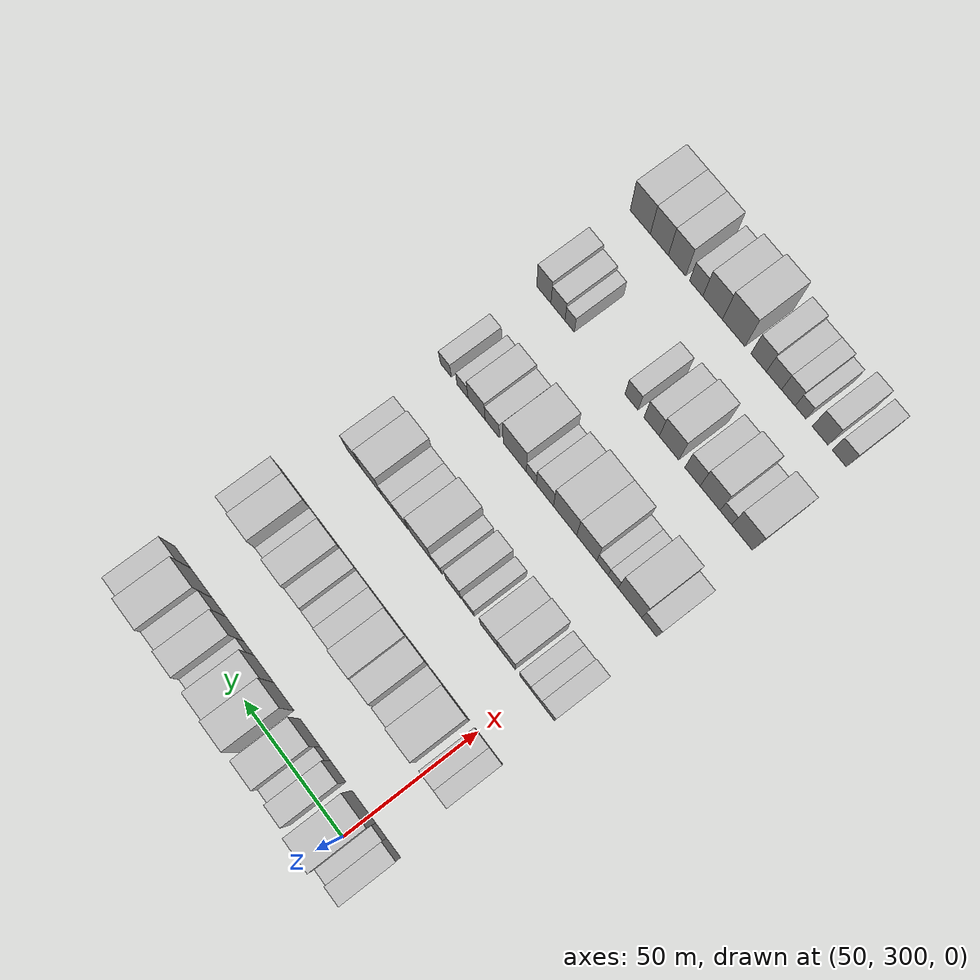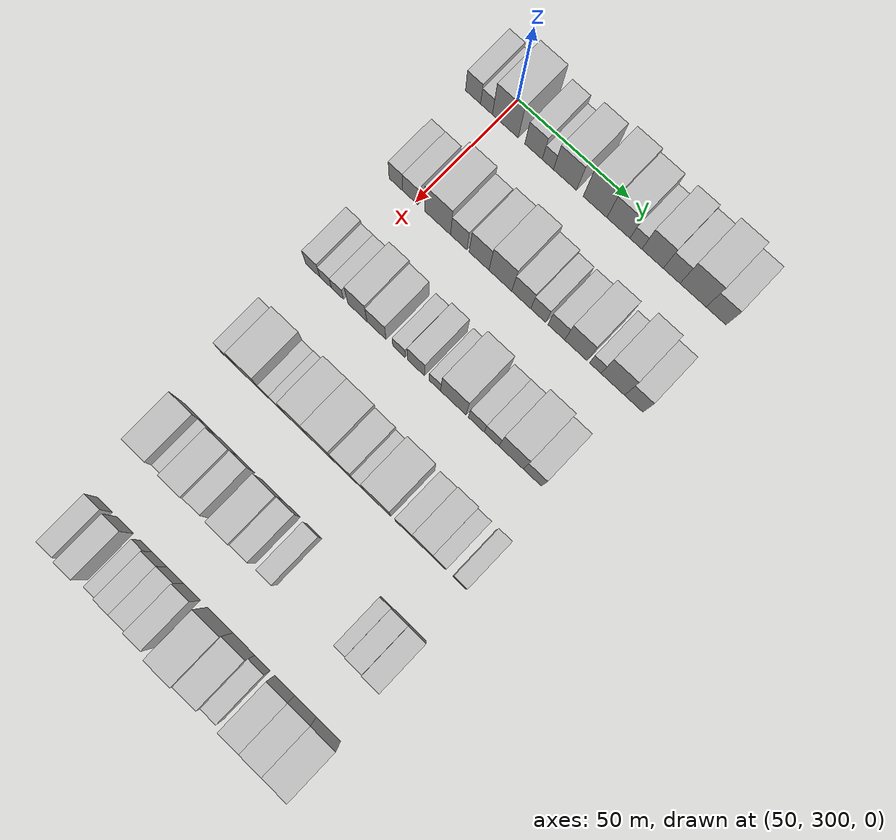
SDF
<sdf version="1.6">
 <world name="default">
  <model name="building_94">
   <static>1</static>
   <pose>50.0000 288.3734 0 0.000000 0.000000 0.000000</pose>
   <link name="link">
    <pose>0 0 7.50 0 0 0</pose>
    <collision name="collision"><geometry><box><size>20.0000 6.9598 15.0000</size></box></geometry></collision>
    <visual name="visual">
     <cast_shadows>0</cast_shadows>
     <geometry><box><size>20.0000 6.9598 15.0000</size></box></geometry>
     <material>
      <script>
       <uri>model://HANNAS_wall/materials/scripts</uri>
       <uri>model://HANNAS_wall/materials/textures</uri>
       <name>vrc/HANNAS_wall</name>
      </script>
     </material>
    </visual>
   </link>
  </model>
  <model name="building_95">
   <static>1</static>
   <pose>50.0000 294.5528 0 0.000000 0.000000 0.000000</pose>
   <link name="link">
    <pose>0 0 6.00 0 0 0</pose>
    <collision name="collision"><geometry><box><size>20.0000 5.3990 12.0000</size></box></geometry></collision>
    <visual name="visual">
     <cast_shadows>0</cast_shadows>
     <geometry><box><size>20.0000 5.3990 12.0000</size></box></geometry>
     <material>
      <script>
       <uri>model://HANNAS_wall/materials/scripts</uri>
       <uri>model://HANNAS_wall/materials/textures</uri>
       <name>vrc/HANNAS_wall</name>
      </script>
     </material>
    </visual>
   </link>
  </model>
  <model name="building_96">
   <static>1</static>
   <pose>50.0000 303.1798 0 0.000000 0.000000 0.000000</pose>
   <link name="link">
    <pose>0 0 12.00 0 0 0</pose>
    <collision name="collision"><geometry><box><size>20.0000 11.8550 24.0000</size></box></geometry></collision>
    <visual name="visual">
     <cast_shadows>0</cast_shadows>
     <geometry><box><size>20.0000 11.8550 24.0000</size></box></geometry>
     <material>
      <script>
       <uri>model://HANNAS_wall/materials/scripts</uri>
       <uri>model://HANNAS_wall/materials/textures</uri>
       <name>vrc/HANNAS_wall</name>
      </script>
     </material>
    </visual>
   </link>
  </model>
  <model name="building_97">
   <static>1</static>
   <pose>50.0000 316.0882 0 0.000000 0.000000 0.000000</pose>
   <link name="link">
    <pose>0 0 9.00 0 0 0</pose>
    <collision name="collision"><geometry><box><size>20.0000 7.9619 18.0000</size></box></geometry></collision>
    <visual name="visual">
     <cast_shadows>0</cast_shadows>
     <geometry><box><size>20.0000 7.9619 18.0000</size></box></geometry>
     <material>
      <script>
       <uri>model://HANNAS_wall/materials/scripts</uri>
       <uri>model://HANNAS_wall/materials/textures</uri>
       <name>vrc/HANNAS_wall</name>
      </script>
     </material>
    </visual>
   </link>
  </model>
  <model name="building_98">
   <static>1</static>
   <pose>50.0000 322.5999 0 0.000000 0.000000 0.000000</pose>
   <link name="link">
    <pose>0 0 6.00 0 0 0</pose>
    <collision name="collision"><geometry><box><size>20.0000 5.0614 12.0000</size></box></geometry></collision>
    <visual name="visual">
     <cast_shadows>0</cast_shadows>
     <geometry><box><size>20.0000 5.0614 12.0000</size></box></geometry>
     <material>
      <script>
       <uri>model://HANNAS_wall/materials/scripts</uri>
       <uri>model://HANNAS_wall/materials/textures</uri>
       <name>vrc/HANNAS_wall</name>
      </script>
     </material>
    </visual>
   </link>
  </model>
  <model name="building_99">
   <static>1</static>
   <pose>50.0000 330.3303 0 0.000000 0.000000 0.000000</pose>
   <link name="link">
    <pose>0 0 10.50 0 0 0</pose>
    <collision name="collision"><geometry><box><size>20.0000 10.3994 21.0000</size></box></geometry></collision>
    <visual name="visual">
     <cast_shadows>0</cast_shadows>
     <geometry><box><size>20.0000 10.3994 21.0000</size></box></geometry>
     <material>
      <script>
       <uri>model://HANNAS_wall/materials/scripts</uri>
       <uri>model://HANNAS_wall/materials/textures</uri>
       <name>vrc/HANNAS_wall</name>
      </script>
     </material>
    </visual>
   </link>
  </model>
  <model name="building_100">
   <static>1</static>
   <pose>50.0000 343.8499 0 0.000000 0.000000 0.000000</pose>
   <link name="link">
    <pose>0 0 12.00 0 0 0</pose>
    <collision name="collision"><geometry><box><size>20.0000 10.6398 24.0000</size></box></geometry></collision>
    <visual name="visual">
     <cast_shadows>0</cast_shadows>
     <geometry><box><size>20.0000 10.6398 24.0000</size></box></geometry>
     <material>
      <script>
       <uri>model://HANNAS_wall/materials/scripts</uri>
       <uri>model://HANNAS_wall/materials/textures</uri>
       <name>vrc/HANNAS_wall</name>
      </script>
     </material>
    </visual>
   </link>
  </model>
  <model name="building_101">
   <static>1</static>
   <pose>50.0000 354.2996 0 0.000000 0.000000 0.000000</pose>
   <link name="link">
    <pose>0 0 10.50 0 0 0</pose>
    <collision name="collision"><geometry><box><size>20.0000 10.2597 21.0000</size></box></geometry></collision>
    <visual name="visual">
     <cast_shadows>0</cast_shadows>
     <geometry><box><size>20.0000 10.2597 21.0000</size></box></geometry>
     <material>
      <script>
       <uri>model://HANNAS_wall/materials/scripts</uri>
       <uri>model://HANNAS_wall/materials/textures</uri>
       <name>vrc/HANNAS_wall</name>
      </script>
     </material>
    </visual>
   </link>
  </model>
  <model name="building_102">
   <static>1</static>
   <pose>50.0000 362.0785 0 0.000000 0.000000 0.000000</pose>
   <link name="link">
    <pose>0 0 6.00 0 0 0</pose>
    <collision name="collision"><geometry><box><size>20.0000 5.2979 12.0000</size></box></geometry></collision>
    <visual name="visual">
     <cast_shadows>0</cast_shadows>
     <geometry><box><size>20.0000 5.2979 12.0000</size></box></geometry>
     <material>
      <script>
       <uri>model://HANNAS_wall/materials/scripts</uri>
       <uri>model://HANNAS_wall/materials/textures</uri>
       <name>vrc/HANNAS_wall</name>
      </script>
     </material>
    </visual>
   </link>
  </model>
  <model name="building_103">
   <static>1</static>
   <pose>50.0000 369.4188 0 0.000000 0.000000 0.000000</pose>
   <link name="link">
    <pose>0 0 10.50 0 0 0</pose>
    <collision name="collision"><geometry><box><size>20.0000 9.3828 21.0000</size></box></geometry></collision>
    <visual name="visual">
     <cast_shadows>0</cast_shadows>
     <geometry><box><size>20.0000 9.3828 21.0000</size></box></geometry>
     <material>
      <script>
       <uri>model://HANNAS_wall/materials/scripts</uri>
       <uri>model://HANNAS_wall/materials/textures</uri>
       <name>vrc/HANNAS_wall</name>
      </script>
     </material>
    </visual>
   </link>
  </model>
  <model name="building_104">
   <static>1</static>
   <pose>50.0000 377.7836 0 0.000000 0.000000 0.000000</pose>
   <link name="link">
    <pose>0 0 9.00 0 0 0</pose>
    <collision name="collision"><geometry><box><size>20.0000 7.3469 18.0000</size></box></geometry></collision>
    <visual name="visual">
     <cast_shadows>0</cast_shadows>
     <geometry><box><size>20.0000 7.3469 18.0000</size></box></geometry>
     <material>
      <script>
       <uri>model://HANNAS_wall/materials/scripts</uri>
       <uri>model://HANNAS_wall/materials/textures</uri>
       <name>vrc/HANNAS_wall</name>
      </script>
     </material>
    </visual>
   </link>
  </model>
  <model name="building_105">
   <static>1</static>
   <pose>50.0000 387.1549 0 0.000000 0.000000 0.000000</pose>
   <link name="link">
    <pose>0 0 12.00 0 0 0</pose>
    <collision name="collision"><geometry><box><size>20.0000 11.3957 24.0000</size></box></geometry></collision>
    <visual name="visual">
     <cast_shadows>0</cast_shadows>
     <geometry><box><size>20.0000 11.3957 24.0000</size></box></geometry>
     <material>
      <script>
       <uri>model://HANNAS_wall/materials/scripts</uri>
       <uri>model://HANNAS_wall/materials/textures</uri>
       <name>vrc/HANNAS_wall</name>
      </script>
     </material>
    </visual>
   </link>
  </model>
  <model name="building_106">
   <static>1</static>
   <pose>50.0000 397.1742 0 0.000000 0.000000 0.000000</pose>
   <link name="link">
    <pose>0 0 9.00 0 0 0</pose>
    <collision name="collision"><geometry><box><size>20.0000 8.6430 18.0000</size></box></geometry></collision>
    <visual name="visual">
     <cast_shadows>0</cast_shadows>
     <geometry><box><size>20.0000 8.6430 18.0000</size></box></geometry>
     <material>
      <script>
       <uri>model://HANNAS_wall/materials/scripts</uri>
       <uri>model://HANNAS_wall/materials/textures</uri>
       <name>vrc/HANNAS_wall</name>
      </script>
     </material>
    </visual>
   </link>
  </model>
  <model name="building_227">
   <static>1</static>
   <pose>90.0000 290.9614 0 0.000000 0.000000 0.000000</pose>
   <link name="link">
    <pose>0 0 7.50 0 0 0</pose>
    <collision name="collision"><geometry><box><size>20.0000 6.2033 15.0000</size></box></geometry></collision>
    <visual name="visual">
     <cast_shadows>0</cast_shadows>
     <geometry><box><size>20.0000 6.2033 15.0000</size></box></geometry>
     <material>
      <script>
       <uri>model://HANNAS_wall/materials/scripts</uri>
       <uri>model://HANNAS_wall/materials/textures</uri>
       <name>vrc/HANNAS_wall</name>
      </script>
     </material>
    </visual>
   </link>
  </model>
  <model name="building_228">
   <static>1</static>
   <pose>90.0000 297.5944 0 0.000000 0.000000 0.000000</pose>
   <link name="link">
    <pose>0 0 7.50 0 0 0</pose>
    <collision name="collision"><geometry><box><size>20.0000 7.0626 15.0000</size></box></geometry></collision>
    <visual name="visual">
     <cast_shadows>0</cast_shadows>
     <geometry><box><size>20.0000 7.0626 15.0000</size></box></geometry>
     <material>
      <script>
       <uri>model://HANNAS_wall/materials/scripts</uri>
       <uri>model://HANNAS_wall/materials/textures</uri>
       <name>vrc/HANNAS_wall</name>
      </script>
     </material>
    </visual>
   </link>
  </model>
  <model name="building_229">
   <static>1</static>
   <pose>90.0000 310.0366 0 0.000000 0.000000 0.000000</pose>
   <link name="link">
    <pose>0 0 12.00 0 0 0</pose>
    <collision name="collision"><geometry><box><size>20.0000 11.8219 24.0000</size></box></geometry></collision>
    <visual name="visual">
     <cast_shadows>0</cast_shadows>
     <geometry><box><size>20.0000 11.8219 24.0000</size></box></geometry>
     <material>
      <script>
       <uri>model://HANNAS_wall/materials/scripts</uri>
       <uri>model://HANNAS_wall/materials/textures</uri>
       <name>vrc/HANNAS_wall</name>
      </script>
     </material>
    </visual>
   </link>
  </model>
  <model name="building_230">
   <static>1</static>
   <pose>90.0000 319.6495 0 0.000000 0.000000 0.000000</pose>
   <link name="link">
    <pose>0 0 9.00 0 0 0</pose>
    <collision name="collision"><geometry><box><size>20.0000 7.4039 18.0000</size></box></geometry></collision>
    <visual name="visual">
     <cast_shadows>0</cast_shadows>
     <geometry><box><size>20.0000 7.4039 18.0000</size></box></geometry>
     <material>
      <script>
       <uri>model://HANNAS_wall/materials/scripts</uri>
       <uri>model://HANNAS_wall/materials/textures</uri>
       <name>vrc/HANNAS_wall</name>
      </script>
     </material>
    </visual>
   </link>
  </model>
  <model name="building_231">
   <static>1</static>
   <pose>90.0000 328.8360 0 0.000000 0.000000 0.000000</pose>
   <link name="link">
    <pose>0 0 10.50 0 0 0</pose>
    <collision name="collision"><geometry><box><size>20.0000 8.9690 21.0000</size></box></geometry></collision>
    <visual name="visual">
     <cast_shadows>0</cast_shadows>
     <geometry><box><size>20.0000 8.9690 21.0000</size></box></geometry>
     <material>
      <script>
       <uri>model://HANNAS_wall/materials/scripts</uri>
       <uri>model://HANNAS_wall/materials/textures</uri>
       <name>vrc/HANNAS_wall</name>
      </script>
     </material>
    </visual>
   </link>
  </model>
  <model name="building_232">
   <static>1</static>
   <pose>90.0000 338.4058 0 0.000000 0.000000 0.000000</pose>
   <link name="link">
    <pose>0 0 12.00 0 0 0</pose>
    <collision name="collision"><geometry><box><size>20.0000 10.1706 24.0000</size></box></geometry></collision>
    <visual name="visual">
     <cast_shadows>0</cast_shadows>
     <geometry><box><size>20.0000 10.1706 24.0000</size></box></geometry>
     <material>
      <script>
       <uri>model://HANNAS_wall/materials/scripts</uri>
       <uri>model://HANNAS_wall/materials/textures</uri>
       <name>vrc/HANNAS_wall</name>
      </script>
     </material>
    </visual>
   </link>
  </model>
  <model name="building_233">
   <static>1</static>
   <pose>90.0000 347.7431 0 0.000000 0.000000 0.000000</pose>
   <link name="link">
    <pose>0 0 9.00 0 0 0</pose>
    <collision name="collision"><geometry><box><size>20.0000 8.5040 18.0000</size></box></geometry></collision>
    <visual name="visual">
     <cast_shadows>0</cast_shadows>
     <geometry><box><size>20.0000 8.5040 18.0000</size></box></geometry>
     <material>
      <script>
       <uri>model://HANNAS_wall/materials/scripts</uri>
       <uri>model://HANNAS_wall/materials/textures</uri>
       <name>vrc/HANNAS_wall</name>
      </script>
     </material>
    </visual>
   </link>
  </model>
  <model name="building_234">
   <static>1</static>
   <pose>90.0000 355.3225 0 0.000000 0.000000 0.000000</pose>
   <link name="link">
    <pose>0 0 7.50 0 0 0</pose>
    <collision name="collision"><geometry><box><size>20.0000 6.6549 15.0000</size></box></geometry></collision>
    <visual name="visual">
     <cast_shadows>0</cast_shadows>
     <geometry><box><size>20.0000 6.6549 15.0000</size></box></geometry>
     <material>
      <script>
       <uri>model://HANNAS_wall/materials/scripts</uri>
       <uri>model://HANNAS_wall/materials/textures</uri>
       <name>vrc/HANNAS_wall</name>
      </script>
     </material>
    </visual>
   </link>
  </model>
  <model name="building_235">
   <static>1</static>
   <pose>90.0000 363.3416 0 0.000000 0.000000 0.000000</pose>
   <link name="link">
    <pose>0 0 7.50 0 0 0</pose>
    <collision name="collision"><geometry><box><size>20.0000 7.3833 15.0000</size></box></geometry></collision>
    <visual name="visual">
     <cast_shadows>0</cast_shadows>
     <geometry><box><size>20.0000 7.3833 15.0000</size></box></geometry>
     <material>
      <script>
       <uri>model://HANNAS_wall/materials/scripts</uri>
       <uri>model://HANNAS_wall/materials/textures</uri>
       <name>vrc/HANNAS_wall</name>
      </script>
     </material>
    </visual>
   </link>
  </model>
  <model name="building_236">
   <static>1</static>
   <pose>90.0000 371.9631 0 0.000000 0.000000 0.000000</pose>
   <link name="link">
    <pose>0 0 10.50 0 0 0</pose>
    <collision name="collision"><geometry><box><size>20.0000 9.8597 21.0000</size></box></geometry></collision>
    <visual name="visual">
     <cast_shadows>0</cast_shadows>
     <geometry><box><size>20.0000 9.8597 21.0000</size></box></geometry>
     <material>
      <script>
       <uri>model://HANNAS_wall/materials/scripts</uri>
       <uri>model://HANNAS_wall/materials/textures</uri>
       <name>vrc/HANNAS_wall</name>
      </script>
     </material>
    </visual>
   </link>
  </model>
  <model name="building_237">
   <static>1</static>
   <pose>90.0000 380.4570 0 0.000000 0.000000 0.000000</pose>
   <link name="link">
    <pose>0 0 6.00 0 0 0</pose>
    <collision name="collision"><geometry><box><size>20.0000 5.1281 12.0000</size></box></geometry></collision>
    <visual name="visual">
     <cast_shadows>0</cast_shadows>
     <geometry><box><size>20.0000 5.1281 12.0000</size></box></geometry>
     <material>
      <script>
       <uri>model://HANNAS_wall/materials/scripts</uri>
       <uri>model://HANNAS_wall/materials/textures</uri>
       <name>vrc/HANNAS_wall</name>
      </script>
     </material>
    </visual>
   </link>
  </model>
  <model name="building_238">
   <static>1</static>
   <pose>90.0000 388.1406 0 0.000000 0.000000 0.000000</pose>
   <link name="link">
    <pose>0 0 12.00 0 0 0</pose>
    <collision name="collision"><geometry><box><size>20.0000 10.2392 24.0000</size></box></geometry></collision>
    <visual name="visual">
     <cast_shadows>0</cast_shadows>
     <geometry><box><size>20.0000 10.2392 24.0000</size></box></geometry>
     <material>
      <script>
       <uri>model://HANNAS_wall/materials/scripts</uri>
       <uri>model://HANNAS_wall/materials/textures</uri>
       <name>vrc/HANNAS_wall</name>
      </script>
     </material>
    </visual>
   </link>
  </model>
  <model name="building_239">
   <static>1</static>
   <pose>90.0000 397.2187 0 0.000000 0.000000 0.000000</pose>
   <link name="link">
    <pose>0 0 9.00 0 0 0</pose>
    <collision name="collision"><geometry><box><size>20.0000 7.9169 18.0000</size></box></geometry></collision>
    <visual name="visual">
     <cast_shadows>0</cast_shadows>
     <geometry><box><size>20.0000 7.9169 18.0000</size></box></geometry>
     <material>
      <script>
       <uri>model://HANNAS_wall/materials/scripts</uri>
       <uri>model://HANNAS_wall/materials/textures</uri>
       <name>vrc/HANNAS_wall</name>
      </script>
     </material>
    </visual>
   </link>
  </model>
  <model name="building_358">
   <static>1</static>
   <pose>130.0000 291.8633 0 0.000000 0.000000 0.000000</pose>
   <link name="link">
    <pose>0 0 7.50 0 0 0</pose>
    <collision name="collision"><geometry><box><size>20.0000 6.5024 15.0000</size></box></geometry></collision>
    <visual name="visual">
     <cast_shadows>0</cast_shadows>
     <geometry><box><size>20.0000 6.5024 15.0000</size></box></geometry>
     <material>
      <script>
       <uri>model://HANNAS_wall/materials/scripts</uri>
       <uri>model://HANNAS_wall/materials/textures</uri>
       <name>vrc/HANNAS_wall</name>
      </script>
     </material>
    </visual>
   </link>
  </model>
  <model name="building_359">
   <static>1</static>
   <pose>130.0000 297.7684 0 0.000000 0.000000 0.000000</pose>
   <link name="link">
    <pose>0 0 6.00 0 0 0</pose>
    <collision name="collision"><geometry><box><size>20.0000 5.3078 12.0000</size></box></geometry></collision>
    <visual name="visual">
     <cast_shadows>0</cast_shadows>
     <geometry><box><size>20.0000 5.3078 12.0000</size></box></geometry>
     <material>
      <script>
       <uri>model://HANNAS_wall/materials/scripts</uri>
       <uri>model://HANNAS_wall/materials/textures</uri>
       <name>vrc/HANNAS_wall</name>
      </script>
     </material>
    </visual>
   </link>
  </model>
  <model name="building_360">
   <static>1</static>
   <pose>130.0000 303.1286 0 0.000000 0.000000 0.000000</pose>
   <link name="link">
    <pose>0 0 6.00 0 0 0</pose>
    <collision name="collision"><geometry><box><size>20.0000 5.4126 12.0000</size></box></geometry></collision>
    <visual name="visual">
     <cast_shadows>0</cast_shadows>
     <geometry><box><size>20.0000 5.4126 12.0000</size></box></geometry>
     <material>
      <script>
       <uri>model://HANNAS_wall/materials/scripts</uri>
       <uri>model://HANNAS_wall/materials/textures</uri>
       <name>vrc/HANNAS_wall</name>
      </script>
     </material>
    </visual>
   </link>
  </model>
  <model name="building_361">
   <static>1</static>
   <pose>130.0000 312.1963 0 0.000000 0.000000 0.000000</pose>
   <link name="link">
    <pose>0 0 10.50 0 0 0</pose>
    <collision name="collision"><geometry><box><size>20.0000 8.7228 21.0000</size></box></geometry></collision>
    <visual name="visual">
     <cast_shadows>0</cast_shadows>
     <geometry><box><size>20.0000 8.7228 21.0000</size></box></geometry>
     <material>
      <script>
       <uri>model://HANNAS_wall/materials/scripts</uri>
       <uri>model://HANNAS_wall/materials/textures</uri>
       <name>vrc/HANNAS_wall</name>
      </script>
     </material>
    </visual>
   </link>
  </model>
  <model name="building_362">
   <static>1</static>
   <pose>130.0000 320.8596 0 0.000000 0.000000 0.000000</pose>
   <link name="link">
    <pose>0 0 9.00 0 0 0</pose>
    <collision name="collision"><geometry><box><size>20.0000 8.6039 18.0000</size></box></geometry></collision>
    <visual name="visual">
     <cast_shadows>0</cast_shadows>
     <geometry><box><size>20.0000 8.6039 18.0000</size></box></geometry>
     <material>
      <script>
       <uri>model://HANNAS_wall/materials/scripts</uri>
       <uri>model://HANNAS_wall/materials/textures</uri>
       <name>vrc/HANNAS_wall</name>
      </script>
     </material>
    </visual>
   </link>
  </model>
  <model name="building_363">
   <static>1</static>
   <pose>130.0000 330.9549 0 0.000000 0.000000 0.000000</pose>
   <link name="link">
    <pose>0 0 6.00 0 0 0</pose>
    <collision name="collision"><geometry><box><size>20.0000 5.5866 12.0000</size></box></geometry></collision>
    <visual name="visual">
     <cast_shadows>0</cast_shadows>
     <geometry><box><size>20.0000 5.5866 12.0000</size></box></geometry>
     <material>
      <script>
       <uri>model://HANNAS_wall/materials/scripts</uri>
       <uri>model://HANNAS_wall/materials/textures</uri>
       <name>vrc/HANNAS_wall</name>
      </script>
     </material>
    </visual>
   </link>
  </model>
  <model name="building_364">
   <static>1</static>
   <pose>130.0000 338.5749 0 0.000000 0.000000 0.000000</pose>
   <link name="link">
    <pose>0 0 9.00 0 0 0</pose>
    <collision name="collision"><geometry><box><size>20.0000 7.6532 18.0000</size></box></geometry></collision>
    <visual name="visual">
     <cast_shadows>0</cast_shadows>
     <geometry><box><size>20.0000 7.6532 18.0000</size></box></geometry>
     <material>
      <script>
       <uri>model://HANNAS_wall/materials/scripts</uri>
       <uri>model://HANNAS_wall/materials/textures</uri>
       <name>vrc/HANNAS_wall</name>
      </script>
     </material>
    </visual>
   </link>
  </model>
  <model name="building_365">
   <static>1</static>
   <pose>130.0000 346.9737 0 0.000000 0.000000 0.000000</pose>
   <link name="link">
    <pose>0 0 6.00 0 0 0</pose>
    <collision name="collision"><geometry><box><size>20.0000 5.1445 12.0000</size></box></geometry></collision>
    <visual name="visual">
     <cast_shadows>0</cast_shadows>
     <geometry><box><size>20.0000 5.1445 12.0000</size></box></geometry>
     <material>
      <script>
       <uri>model://HANNAS_wall/materials/scripts</uri>
       <uri>model://HANNAS_wall/materials/textures</uri>
       <name>vrc/HANNAS_wall</name>
      </script>
     </material>
    </visual>
   </link>
  </model>
  <model name="building_366">
   <static>1</static>
   <pose>130.0000 355.1839 0 0.000000 0.000000 0.000000</pose>
   <link name="link">
    <pose>0 0 12.00 0 0 0</pose>
    <collision name="collision"><geometry><box><size>20.0000 11.2757 24.0000</size></box></geometry></collision>
    <visual name="visual">
     <cast_shadows>0</cast_shadows>
     <geometry><box><size>20.0000 11.2757 24.0000</size></box></geometry>
     <material>
      <script>
       <uri>model://HANNAS_wall/materials/scripts</uri>
       <uri>model://HANNAS_wall/materials/textures</uri>
       <name>vrc/HANNAS_wall</name>
      </script>
     </material>
    </visual>
   </link>
  </model>
  <model name="building_367">
   <static>1</static>
   <pose>130.0000 365.3002 0 0.000000 0.000000 0.000000</pose>
   <link name="link">
    <pose>0 0 7.50 0 0 0</pose>
    <collision name="collision"><geometry><box><size>20.0000 6.9570 15.0000</size></box></geometry></collision>
    <visual name="visual">
     <cast_shadows>0</cast_shadows>
     <geometry><box><size>20.0000 6.9570 15.0000</size></box></geometry>
     <material>
      <script>
       <uri>model://HANNAS_wall/materials/scripts</uri>
       <uri>model://HANNAS_wall/materials/textures</uri>
       <name>vrc/HANNAS_wall</name>
      </script>
     </material>
    </visual>
   </link>
  </model>
  <model name="building_368">
   <static>1</static>
   <pose>130.0000 372.0263 0 0.000000 0.000000 0.000000</pose>
   <link name="link">
    <pose>0 0 7.50 0 0 0</pose>
    <collision name="collision"><geometry><box><size>20.0000 6.4951 15.0000</size></box></geometry></collision>
    <visual name="visual">
     <cast_shadows>0</cast_shadows>
     <geometry><box><size>20.0000 6.4951 15.0000</size></box></geometry>
     <material>
      <script>
       <uri>model://HANNAS_wall/materials/scripts</uri>
       <uri>model://HANNAS_wall/materials/textures</uri>
       <name>vrc/HANNAS_wall</name>
      </script>
     </material>
    </visual>
   </link>
  </model>
  <model name="building_369">
   <static>1</static>
   <pose>130.0000 380.6513 0 0.000000 0.000000 0.000000</pose>
   <link name="link">
    <pose>0 0 12.00 0 0 0</pose>
    <collision name="collision"><geometry><box><size>20.0000 10.7551 24.0000</size></box></geometry></collision>
    <visual name="visual">
     <cast_shadows>0</cast_shadows>
     <geometry><box><size>20.0000 10.7551 24.0000</size></box></geometry>
     <material>
      <script>
       <uri>model://HANNAS_wall/materials/scripts</uri>
       <uri>model://HANNAS_wall/materials/textures</uri>
       <name>vrc/HANNAS_wall</name>
      </script>
     </material>
    </visual>
   </link>
  </model>
  <model name="building_370">
   <static>1</static>
   <pose>130.0000 389.9114 0 0.000000 0.000000 0.000000</pose>
   <link name="link">
    <pose>0 0 9.00 0 0 0</pose>
    <collision name="collision"><geometry><box><size>20.0000 7.7650 18.0000</size></box></geometry></collision>
    <visual name="visual">
     <cast_shadows>0</cast_shadows>
     <geometry><box><size>20.0000 7.7650 18.0000</size></box></geometry>
     <material>
      <script>
       <uri>model://HANNAS_wall/materials/scripts</uri>
       <uri>model://HANNAS_wall/materials/textures</uri>
       <name>vrc/HANNAS_wall</name>
      </script>
     </material>
    </visual>
   </link>
  </model>
  <model name="building_499">
   <static>1</static>
   <pose>170.0000 293.1370 0 0.000000 0.000000 0.000000</pose>
   <link name="link">
    <pose>0 0 7.50 0 0 0</pose>
    <collision name="collision"><geometry><box><size>20.0000 7.3452 15.0000</size></box></geometry></collision>
    <visual name="visual">
     <cast_shadows>0</cast_shadows>
     <geometry><box><size>20.0000 7.3452 15.0000</size></box></geometry>
     <material>
      <script>
       <uri>model://HANNAS_wall/materials/scripts</uri>
       <uri>model://HANNAS_wall/materials/textures</uri>
       <name>vrc/HANNAS_wall</name>
      </script>
     </material>
    </visual>
   </link>
  </model>
  <model name="building_500">
   <static>1</static>
   <pose>170.0000 302.5219 0 0.000000 0.000000 0.000000</pose>
   <link name="link">
    <pose>0 0 12.00 0 0 0</pose>
    <collision name="collision"><geometry><box><size>20.0000 11.4247 24.0000</size></box></geometry></collision>
    <visual name="visual">
     <cast_shadows>0</cast_shadows>
     <geometry><box><size>20.0000 11.4247 24.0000</size></box></geometry>
     <material>
      <script>
       <uri>model://HANNAS_wall/materials/scripts</uri>
       <uri>model://HANNAS_wall/materials/textures</uri>
       <name>vrc/HANNAS_wall</name>
      </script>
     </material>
    </visual>
   </link>
  </model>
  <model name="building_501">
   <static>1</static>
   <pose>170.0000 310.7366 0 0.000000 0.000000 0.000000</pose>
   <link name="link">
    <pose>0 0 6.00 0 0 0</pose>
    <collision name="collision"><geometry><box><size>20.0000 5.0046 12.0000</size></box></geometry></collision>
    <visual name="visual">
     <cast_shadows>0</cast_shadows>
     <geometry><box><size>20.0000 5.0046 12.0000</size></box></geometry>
     <material>
      <script>
       <uri>model://HANNAS_wall/materials/scripts</uri>
       <uri>model://HANNAS_wall/materials/textures</uri>
       <name>vrc/HANNAS_wall</name>
      </script>
     </material>
    </visual>
   </link>
  </model>
  <model name="building_502">
   <static>1</static>
   <pose>170.0000 316.0457 0 0.000000 0.000000 0.000000</pose>
   <link name="link">
    <pose>0 0 6.00 0 0 0</pose>
    <collision name="collision"><geometry><box><size>20.0000 5.6136 12.0000</size></box></geometry></collision>
    <visual name="visual">
     <cast_shadows>0</cast_shadows>
     <geometry><box><size>20.0000 5.6136 12.0000</size></box></geometry>
     <material>
      <script>
       <uri>model://HANNAS_wall/materials/scripts</uri>
       <uri>model://HANNAS_wall/materials/textures</uri>
       <name>vrc/HANNAS_wall</name>
      </script>
     </material>
    </visual>
   </link>
  </model>
  <model name="building_503">
   <static>1</static>
   <pose>170.0000 323.8313 0 0.000000 0.000000 0.000000</pose>
   <link name="link">
    <pose>0 0 12.00 0 0 0</pose>
    <collision name="collision"><geometry><box><size>20.0000 9.9575 24.0000</size></box></geometry></collision>
    <visual name="visual">
     <cast_shadows>0</cast_shadows>
     <geometry><box><size>20.0000 9.9575 24.0000</size></box></geometry>
     <material>
      <script>
       <uri>model://HANNAS_wall/materials/scripts</uri>
       <uri>model://HANNAS_wall/materials/textures</uri>
       <name>vrc/HANNAS_wall</name>
      </script>
     </material>
    </visual>
   </link>
  </model>
  <model name="building_504">
   <static>1</static>
   <pose>170.0000 334.6335 0 0.000000 0.000000 0.000000</pose>
   <link name="link">
    <pose>0 0 12.00 0 0 0</pose>
    <collision name="collision"><geometry><box><size>20.0000 11.6469 24.0000</size></box></geometry></collision>
    <visual name="visual">
     <cast_shadows>0</cast_shadows>
     <geometry><box><size>20.0000 11.6469 24.0000</size></box></geometry>
     <material>
      <script>
       <uri>model://HANNAS_wall/materials/scripts</uri>
       <uri>model://HANNAS_wall/materials/textures</uri>
       <name>vrc/HANNAS_wall</name>
      </script>
     </material>
    </visual>
   </link>
  </model>
  <model name="building_505">
   <static>1</static>
   <pose>170.0000 344.7959 0 0.000000 0.000000 0.000000</pose>
   <link name="link">
    <pose>0 0 9.00 0 0 0</pose>
    <collision name="collision"><geometry><box><size>20.0000 8.6780 18.0000</size></box></geometry></collision>
    <visual name="visual">
     <cast_shadows>0</cast_shadows>
     <geometry><box><size>20.0000 8.6780 18.0000</size></box></geometry>
     <material>
      <script>
       <uri>model://HANNAS_wall/materials/scripts</uri>
       <uri>model://HANNAS_wall/materials/textures</uri>
       <name>vrc/HANNAS_wall</name>
      </script>
     </material>
    </visual>
   </link>
  </model>
  <model name="building_506">
   <static>1</static>
   <pose>170.0000 351.6371 0 0.000000 0.000000 0.000000</pose>
   <link name="link">
    <pose>0 0 6.00 0 0 0</pose>
    <collision name="collision"><geometry><box><size>20.0000 5.0044 12.0000</size></box></geometry></collision>
    <visual name="visual">
     <cast_shadows>0</cast_shadows>
     <geometry><box><size>20.0000 5.0044 12.0000</size></box></geometry>
     <material>
      <script>
       <uri>model://HANNAS_wall/materials/scripts</uri>
       <uri>model://HANNAS_wall/materials/textures</uri>
       <name>vrc/HANNAS_wall</name>
      </script>
     </material>
    </visual>
   </link>
  </model>
  <model name="building_507">
   <static>1</static>
   <pose>170.0000 360.0686 0 0.000000 0.000000 0.000000</pose>
   <link name="link">
    <pose>0 0 12.00 0 0 0</pose>
    <collision name="collision"><geometry><box><size>20.0000 11.8585 24.0000</size></box></geometry></collision>
    <visual name="visual">
     <cast_shadows>0</cast_shadows>
     <geometry><box><size>20.0000 11.8585 24.0000</size></box></geometry>
     <material>
      <script>
       <uri>model://HANNAS_wall/materials/scripts</uri>
       <uri>model://HANNAS_wall/materials/textures</uri>
       <name>vrc/HANNAS_wall</name>
      </script>
     </material>
    </visual>
   </link>
  </model>
  <model name="building_508">
   <static>1</static>
   <pose>170.0000 371.6276 0 0.000000 0.000000 0.000000</pose>
   <link name="link">
    <pose>0 0 7.50 0 0 0</pose>
    <collision name="collision"><geometry><box><size>20.0000 7.2596 15.0000</size></box></geometry></collision>
    <visual name="visual">
     <cast_shadows>0</cast_shadows>
     <geometry><box><size>20.0000 7.2596 15.0000</size></box></geometry>
     <material>
      <script>
       <uri>model://HANNAS_wall/materials/scripts</uri>
       <uri>model://HANNAS_wall/materials/textures</uri>
       <name>vrc/HANNAS_wall</name>
      </script>
     </material>
    </visual>
   </link>
  </model>
  <model name="building_509">
   <static>1</static>
   <pose>170.0000 379.6787 0 0.000000 0.000000 0.000000</pose>
   <link name="link">
    <pose>0 0 9.00 0 0 0</pose>
    <collision name="collision"><geometry><box><size>20.0000 8.8425 18.0000</size></box></geometry></collision>
    <visual name="visual">
     <cast_shadows>0</cast_shadows>
     <geometry><box><size>20.0000 8.8425 18.0000</size></box></geometry>
     <material>
      <script>
       <uri>model://HANNAS_wall/materials/scripts</uri>
       <uri>model://HANNAS_wall/materials/textures</uri>
       <name>vrc/HANNAS_wall</name>
      </script>
     </material>
    </visual>
   </link>
  </model>
  <model name="building_510">
   <static>1</static>
   <pose>170.0000 386.9878 0 0.000000 0.000000 0.000000</pose>
   <link name="link">
    <pose>0 0 6.00 0 0 0</pose>
    <collision name="collision"><geometry><box><size>20.0000 5.7758 12.0000</size></box></geometry></collision>
    <visual name="visual">
     <cast_shadows>0</cast_shadows>
     <geometry><box><size>20.0000 5.7758 12.0000</size></box></geometry>
     <material>
      <script>
       <uri>model://HANNAS_wall/materials/scripts</uri>
       <uri>model://HANNAS_wall/materials/textures</uri>
       <name>vrc/HANNAS_wall</name>
      </script>
     </material>
    </visual>
   </link>
  </model>
  <model name="building_511">
   <static>1</static>
   <pose>170.0000 395.7556 0 0.000000 0.000000 0.000000</pose>
   <link name="link">
    <pose>0 0 6.00 0 0 0</pose>
    <collision name="collision"><geometry><box><size>20.0000 5.7597 12.0000</size></box></geometry></collision>
    <visual name="visual">
     <cast_shadows>0</cast_shadows>
     <geometry><box><size>20.0000 5.7597 12.0000</size></box></geometry>
     <material>
      <script>
       <uri>model://HANNAS_wall/materials/scripts</uri>
       <uri>model://HANNAS_wall/materials/textures</uri>
       <name>vrc/HANNAS_wall</name>
      </script>
     </material>
    </visual>
   </link>
  </model>
  <model name="building_637">
   <static>1</static>
   <pose>210.0000 297.3231 0 0.000000 0.000000 0.000000</pose>
   <link name="link">
    <pose>0 0 10.50 0 0 0</pose>
    <collision name="collision"><geometry><box><size>20.0000 10.1024 21.0000</size></box></geometry></collision>
    <visual name="visual">
     <cast_shadows>0</cast_shadows>
     <geometry><box><size>20.0000 10.1024 21.0000</size></box></geometry>
     <material>
      <script>
       <uri>model://HANNAS_wall/materials/scripts</uri>
       <uri>model://HANNAS_wall/materials/textures</uri>
       <name>vrc/HANNAS_wall</name>
      </script>
     </material>
    </visual>
   </link>
  </model>
  <model name="building_638">
   <static>1</static>
   <pose>210.0000 305.1949 0 0.000000 0.000000 0.000000</pose>
   <link name="link">
    <pose>0 0 6.00 0 0 0</pose>
    <collision name="collision"><geometry><box><size>20.0000 5.6413 12.0000</size></box></geometry></collision>
    <visual name="visual">
     <cast_shadows>0</cast_shadows>
     <geometry><box><size>20.0000 5.6413 12.0000</size></box></geometry>
     <material>
      <script>
       <uri>model://HANNAS_wall/materials/scripts</uri>
       <uri>model://HANNAS_wall/materials/textures</uri>
       <name>vrc/HANNAS_wall</name>
      </script>
     </material>
    </visual>
   </link>
  </model>
  <model name="building_639">
   <static>1</static>
   <pose>210.0000 312.8600 0 0.000000 0.000000 0.000000</pose>
   <link name="link">
    <pose>0 0 10.50 0 0 0</pose>
    <collision name="collision"><geometry><box><size>20.0000 9.6890 21.0000</size></box></geometry></collision>
    <visual name="visual">
     <cast_shadows>0</cast_shadows>
     <geometry><box><size>20.0000 9.6890 21.0000</size></box></geometry>
     <material>
      <script>
       <uri>model://HANNAS_wall/materials/scripts</uri>
       <uri>model://HANNAS_wall/materials/textures</uri>
       <name>vrc/HANNAS_wall</name>
      </script>
     </material>
    </visual>
   </link>
  </model>
  <model name="building_640">
   <static>1</static>
   <pose>210.0000 321.4558 0 0.000000 0.000000 0.000000</pose>
   <link name="link">
    <pose>0 0 9.00 0 0 0</pose>
    <collision name="collision"><geometry><box><size>20.0000 7.5027 18.0000</size></box></geometry></collision>
    <visual name="visual">
     <cast_shadows>0</cast_shadows>
     <geometry><box><size>20.0000 7.5027 18.0000</size></box></geometry>
     <material>
      <script>
       <uri>model://HANNAS_wall/materials/scripts</uri>
       <uri>model://HANNAS_wall/materials/textures</uri>
       <name>vrc/HANNAS_wall</name>
      </script>
     </material>
    </visual>
   </link>
  </model>
  <model name="building_641">
   <static>1</static>
   <pose>210.0000 333.0598 0 0.000000 0.000000 0.000000</pose>
   <link name="link">
    <pose>0 0 10.50 0 0 0</pose>
    <collision name="collision"><geometry><box><size>20.0000 9.7052 21.0000</size></box></geometry></collision>
    <visual name="visual">
     <cast_shadows>0</cast_shadows>
     <geometry><box><size>20.0000 9.7052 21.0000</size></box></geometry>
     <material>
      <script>
       <uri>model://HANNAS_wall/materials/scripts</uri>
       <uri>model://HANNAS_wall/materials/textures</uri>
       <name>vrc/HANNAS_wall</name>
      </script>
     </material>
    </visual>
   </link>
  </model>
  <model name="building_642">
   <static>1</static>
   <pose>210.0000 341.7141 0 0.000000 0.000000 0.000000</pose>
   <link name="link">
    <pose>0 0 9.00 0 0 0</pose>
    <collision name="collision"><geometry><box><size>20.0000 7.6035 18.0000</size></box></geometry></collision>
    <visual name="visual">
     <cast_shadows>0</cast_shadows>
     <geometry><box><size>20.0000 7.6035 18.0000</size></box></geometry>
     <material>
      <script>
       <uri>model://HANNAS_wall/materials/scripts</uri>
       <uri>model://HANNAS_wall/materials/textures</uri>
       <name>vrc/HANNAS_wall</name>
      </script>
     </material>
    </visual>
   </link>
  </model>
  <model name="building_643">
   <static>1</static>
   <pose>210.0000 351.8175 0 0.000000 0.000000 0.000000</pose>
   <link name="link">
    <pose>0 0 7.50 0 0 0</pose>
    <collision name="collision"><geometry><box><size>20.0000 6.6033 15.0000</size></box></geometry></collision>
    <visual name="visual">
     <cast_shadows>0</cast_shadows>
     <geometry><box><size>20.0000 6.6033 15.0000</size></box></geometry>
     <material>
      <script>
       <uri>model://HANNAS_wall/materials/scripts</uri>
       <uri>model://HANNAS_wall/materials/textures</uri>
       <name>vrc/HANNAS_wall</name>
      </script>
     </material>
    </visual>
   </link>
  </model>
  <model name="building_644">
   <static>1</static>
   <pose>210.0000 383.3862 0 0.000000 0.000000 0.000000</pose>
   <link name="link">
    <pose>0 0 6.00 0 0 0</pose>
    <collision name="collision"><geometry><box><size>20.0000 4.8447 12.0000</size></box></geometry></collision>
    <visual name="visual">
     <cast_shadows>0</cast_shadows>
     <geometry><box><size>20.0000 4.8447 12.0000</size></box></geometry>
     <material>
      <script>
       <uri>model://HANNAS_wall/materials/scripts</uri>
       <uri>model://HANNAS_wall/materials/textures</uri>
       <name>vrc/HANNAS_wall</name>
      </script>
     </material>
    </visual>
   </link>
  </model>
  <model name="building_645">
   <static>1</static>
   <pose>210.0000 389.4460 0 0.000000 0.000000 0.000000</pose>
   <link name="link">
    <pose>0 0 7.50 0 0 0</pose>
    <collision name="collision"><geometry><box><size>20.0000 7.2749 15.0000</size></box></geometry></collision>
    <visual name="visual">
     <cast_shadows>0</cast_shadows>
     <geometry><box><size>20.0000 7.2749 15.0000</size></box></geometry>
     <material>
      <script>
       <uri>model://HANNAS_wall/materials/scripts</uri>
       <uri>model://HANNAS_wall/materials/textures</uri>
       <name>vrc/HANNAS_wall</name>
      </script>
     </material>
    </visual>
   </link>
  </model>
  <model name="building_646">
   <static>1</static>
   <pose>210.0000 396.7603 0 0.000000 0.000000 0.000000</pose>
   <link name="link">
    <pose>0 0 9.00 0 0 0</pose>
    <collision name="collision"><geometry><box><size>20.0000 7.3536 18.0000</size></box></geometry></collision>
    <visual name="visual">
     <cast_shadows>0</cast_shadows>
     <geometry><box><size>20.0000 7.3536 18.0000</size></box></geometry>
     <material>
      <script>
       <uri>model://HANNAS_wall/materials/scripts</uri>
       <uri>model://HANNAS_wall/materials/textures</uri>
       <name>vrc/HANNAS_wall</name>
      </script>
     </material>
    </visual>
   </link>
  </model>
  <model name="building_776">
   <static>1</static>
   <pose>250.0000 298.0919 0 0.000000 0.000000 0.000000</pose>
   <link name="link">
    <pose>0 0 7.50 0 0 0</pose>
    <collision name="collision"><geometry><box><size>20.0000 6.8614 15.0000</size></box></geometry></collision>
    <visual name="visual">
     <cast_shadows>0</cast_shadows>
     <geometry><box><size>20.0000 6.8614 15.0000</size></box></geometry>
     <material>
      <script>
       <uri>model://HANNAS_wall/materials/scripts</uri>
       <uri>model://HANNAS_wall/materials/textures</uri>
       <name>vrc/HANNAS_wall</name>
      </script>
     </material>
    </visual>
   </link>
  </model>
  <model name="building_777">
   <static>1</static>
   <pose>250.0000 307.3394 0 0.000000 0.000000 0.000000</pose>
   <link name="link">
    <pose>0 0 9.00 0 0 0</pose>
    <collision name="collision"><geometry><box><size>20.0000 7.6335 18.0000</size></box></geometry></collision>
    <visual name="visual">
     <cast_shadows>0</cast_shadows>
     <geometry><box><size>20.0000 7.6335 18.0000</size></box></geometry>
     <material>
      <script>
       <uri>model://HANNAS_wall/materials/scripts</uri>
       <uri>model://HANNAS_wall/materials/textures</uri>
       <name>vrc/HANNAS_wall</name>
      </script>
     </material>
    </visual>
   </link>
  </model>
  <model name="building_778">
   <static>1</static>
   <pose>250.0000 316.8064 0 0.000000 0.000000 0.000000</pose>
   <link name="link">
    <pose>0 0 6.00 0 0 0</pose>
    <collision name="collision"><geometry><box><size>20.0000 5.3005 12.0000</size></box></geometry></collision>
    <visual name="visual">
     <cast_shadows>0</cast_shadows>
     <geometry><box><size>20.0000 5.3005 12.0000</size></box></geometry>
     <material>
      <script>
       <uri>model://HANNAS_wall/materials/scripts</uri>
       <uri>model://HANNAS_wall/materials/textures</uri>
       <name>vrc/HANNAS_wall</name>
      </script>
     </material>
    </visual>
   </link>
  </model>
  <model name="building_779">
   <static>1</static>
   <pose>250.0000 322.7773 0 0.000000 0.000000 0.000000</pose>
   <link name="link">
    <pose>0 0 7.50 0 0 0</pose>
    <collision name="collision"><geometry><box><size>20.0000 6.6413 15.0000</size></box></geometry></collision>
    <visual name="visual">
     <cast_shadows>0</cast_shadows>
     <geometry><box><size>20.0000 6.6413 15.0000</size></box></geometry>
     <material>
      <script>
       <uri>model://HANNAS_wall/materials/scripts</uri>
       <uri>model://HANNAS_wall/materials/textures</uri>
       <name>vrc/HANNAS_wall</name>
      </script>
     </material>
    </visual>
   </link>
  </model>
  <model name="building_780">
   <static>1</static>
   <pose>250.0000 329.8178 0 0.000000 0.000000 0.000000</pose>
   <link name="link">
    <pose>0 0 7.50 0 0 0</pose>
    <collision name="collision"><geometry><box><size>20.0000 7.4397 15.0000</size></box></geometry></collision>
    <visual name="visual">
     <cast_shadows>0</cast_shadows>
     <geometry><box><size>20.0000 7.4397 15.0000</size></box></geometry>
     <material>
      <script>
       <uri>model://HANNAS_wall/materials/scripts</uri>
       <uri>model://HANNAS_wall/materials/textures</uri>
       <name>vrc/HANNAS_wall</name>
      </script>
     </material>
    </visual>
   </link>
  </model>
  <model name="building_781">
   <static>1</static>
   <pose>250.0000 337.3513 0 0.000000 0.000000 0.000000</pose>
   <link name="link">
    <pose>0 0 9.00 0 0 0</pose>
    <collision name="collision"><geometry><box><size>20.0000 7.6273 18.0000</size></box></geometry></collision>
    <visual name="visual">
     <cast_shadows>0</cast_shadows>
     <geometry><box><size>20.0000 7.6273 18.0000</size></box></geometry>
     <material>
      <script>
       <uri>model://HANNAS_wall/materials/scripts</uri>
       <uri>model://HANNAS_wall/materials/textures</uri>
       <name>vrc/HANNAS_wall</name>
      </script>
     </material>
    </visual>
   </link>
  </model>
  <model name="building_782">
   <static>1</static>
   <pose>250.0000 349.8177 0 0.000000 0.000000 0.000000</pose>
   <link name="link">
    <pose>0 0 12.00 0 0 0</pose>
    <collision name="collision"><geometry><box><size>20.0000 11.3055 24.0000</size></box></geometry></collision>
    <visual name="visual">
     <cast_shadows>0</cast_shadows>
     <geometry><box><size>20.0000 11.3055 24.0000</size></box></geometry>
     <material>
      <script>
       <uri>model://HANNAS_wall/materials/scripts</uri>
       <uri>model://HANNAS_wall/materials/textures</uri>
       <name>vrc/HANNAS_wall</name>
      </script>
     </material>
    </visual>
   </link>
  </model>
  <model name="building_783">
   <static>1</static>
   <pose>250.0000 360.4043 0 0.000000 0.000000 0.000000</pose>
   <link name="link">
    <pose>0 0 10.50 0 0 0</pose>
    <collision name="collision"><geometry><box><size>20.0000 9.8677 21.0000</size></box></geometry></collision>
    <visual name="visual">
     <cast_shadows>0</cast_shadows>
     <geometry><box><size>20.0000 9.8677 21.0000</size></box></geometry>
     <material>
      <script>
       <uri>model://HANNAS_wall/materials/scripts</uri>
       <uri>model://HANNAS_wall/materials/textures</uri>
       <name>vrc/HANNAS_wall</name>
      </script>
     </material>
    </visual>
   </link>
  </model>
  <model name="building_784">
   <static>1</static>
   <pose>250.0000 368.6965 0 0.000000 0.000000 0.000000</pose>
   <link name="link">
    <pose>0 0 7.50 0 0 0</pose>
    <collision name="collision"><geometry><box><size>20.0000 6.7165 15.0000</size></box></geometry></collision>
    <visual name="visual">
     <cast_shadows>0</cast_shadows>
     <geometry><box><size>20.0000 6.7165 15.0000</size></box></geometry>
     <material>
      <script>
       <uri>model://HANNAS_wall/materials/scripts</uri>
       <uri>model://HANNAS_wall/materials/textures</uri>
       <name>vrc/HANNAS_wall</name>
      </script>
     </material>
    </visual>
   </link>
  </model>
  <model name="building_785">
   <static>1</static>
   <pose>250.0000 378.4652 0 0.000000 0.000000 0.000000</pose>
   <link name="link">
    <pose>0 0 10.50 0 0 0</pose>
    <collision name="collision"><geometry><box><size>20.0000 8.8209 21.0000</size></box></geometry></collision>
    <visual name="visual">
     <cast_shadows>0</cast_shadows>
     <geometry><box><size>20.0000 8.8209 21.0000</size></box></geometry>
     <material>
      <script>
       <uri>model://HANNAS_wall/materials/scripts</uri>
       <uri>model://HANNAS_wall/materials/textures</uri>
       <name>vrc/HANNAS_wall</name>
      </script>
     </material>
    </visual>
   </link>
  </model>
  <model name="building_786">
   <static>1</static>
   <pose>250.0000 387.5145 0 0.000000 0.000000 0.000000</pose>
   <link name="link">
    <pose>0 0 10.50 0 0 0</pose>
    <collision name="collision"><geometry><box><size>20.0000 9.2777 21.0000</size></box></geometry></collision>
    <visual name="visual">
     <cast_shadows>0</cast_shadows>
     <geometry><box><size>20.0000 9.2777 21.0000</size></box></geometry>
     <material>
      <script>
       <uri>model://HANNAS_wall/materials/scripts</uri>
       <uri>model://HANNAS_wall/materials/textures</uri>
       <name>vrc/HANNAS_wall</name>
      </script>
     </material>
    </visual>
   </link>
  </model>
  <model name="building_787">
   <static>1</static>
   <pose>250.0000 397.3533 0 0.000000 0.000000 0.000000</pose>
   <link name="link">
    <pose>0 0 10.50 0 0 0</pose>
    <collision name="collision"><geometry><box><size>20.0000 10.3999 21.0000</size></box></geometry></collision>
    <visual name="visual">
     <cast_shadows>0</cast_shadows>
     <geometry><box><size>20.0000 10.3999 21.0000</size></box></geometry>
     <material>
      <script>
       <uri>model://HANNAS_wall/materials/scripts</uri>
       <uri>model://HANNAS_wall/materials/textures</uri>
       <name>vrc/HANNAS_wall</name>
      </script>
     </material>
    </visual>
   </link>
  </model>
 </world>
</sdf>
